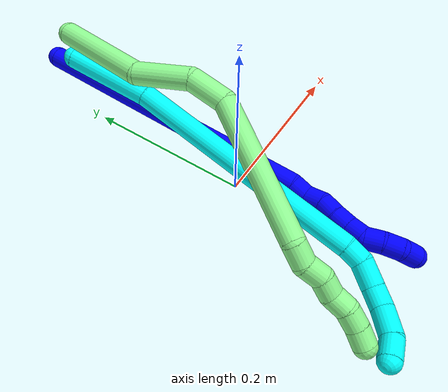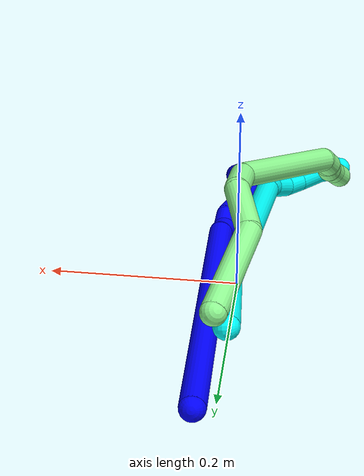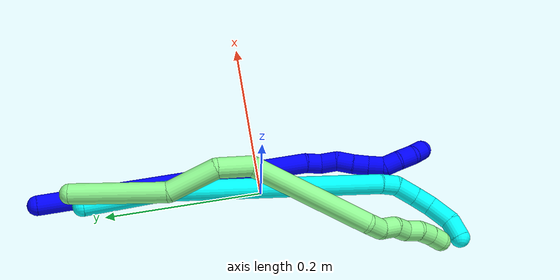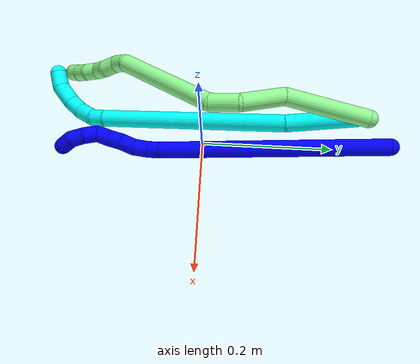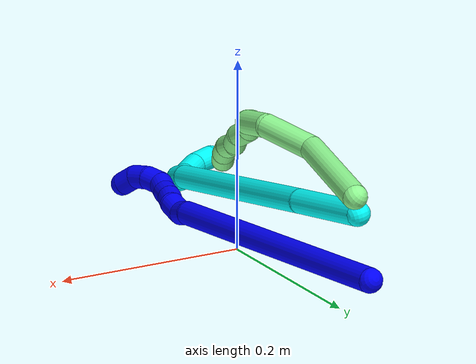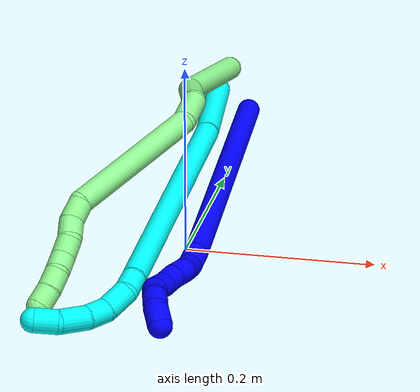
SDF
<sdf version="1.7">
 <world name="default">
  <model name="photoneo_s_sensor">
   <static>1</static>
   <pose>0 0 2 1.57079 1.57079 3.14159</pose>
   <link name="link">
    <inertial><mass>0.1</mass></inertial>
    <sensor name="sensor" type="depth">
     <update_rate>30</update_rate>
     <camera>
      <horizontal_fov>1.22</horizontal_fov>
      <image><width>1920</width><height>1200</height><format>B8G8R8</format></image>
      <clip><near>0.1</near><far>4</far></clip>
      <depth_camera><output>points</output></depth_camera>
     </camera>
     <plugin name="camera_plugin" filename="libgazebo_ros_depth_camera.so">
      <baseline>0.2</baseline>
      <alwaysOn>1</alwaysOn>
      <updateRate>0.0</updateRate>
      <cameraName>camera_ir</cameraName>
      <imageTopicName>/camera/color/image_raw</imageTopicName>
      <cameraInfoTopicName>/camera/color/camera_info</cameraInfoTopicName>
      <depthImageTopicName>/camera/depth/image_raw</depthImageTopicName>
      <depthImageCameraInfoTopicName>/camera/depth/camera_info</depthImageCameraInfoTopicName>
      <pointCloudTopicName>/camera/depth/points</pointCloudTopicName>
      <frameName>fr_optical</frameName>
      <pointCloudCutoff>0.1</pointCloudCutoff>
      <pointCloudCutoffMax>2.0</pointCloudCutoffMax>
      <distortionK1>0</distortionK1>
      <distortionK2>0</distortionK2>
      <distortionK3>0</distortionK3>
      <distortionT1>0</distortionT1>
      <distortionT2>0</distortionT2>
      <CxPrime>0</CxPrime>
      <Cx>0</Cx>
      <Cy>0</Cy>
      <focalLength>0</focalLength>
      <hackBaseline>0</hackBaseline>
     </plugin>
    </sensor>
   </link>
  </model>
  <model name="bin">
   <static>1</static>
   <link name="bottom">
    <collision name="collision-bottom">
     <pose>0 0 -0.01 0 -0 0</pose>
     <geometry><box><size>0.8 0.6 0.02</size></box></geometry>
     <surface>
      <friction><ode><mu>100</mu><mu2>100</mu2></ode></friction>
      <contact><collide_bitmask>65535</collide_bitmask></contact>
     </surface>
    </collision>
   </link>
   <link name="west_wall">
    <collision name="collision-west_wall">
     <pose>-0.41 0 0.1 0 -0 0</pose>
     <geometry><box><size>0.02 0.6 0.2</size></box></geometry>
     <surface>
      <friction><ode><mu>100</mu><mu2>100</mu2></ode></friction>
      <contact><collide_bitmask>65535</collide_bitmask></contact>
     </surface>
    </collision>
   </link>
   <link name="east_wall">
    <collision name="collision-east_wall">
     <pose>0.41 0 0.1 0 -0 0</pose>
     <geometry><box><size>0.02 0.6 0.2</size></box></geometry>
     <surface>
      <friction><ode><mu>100</mu><mu2>100</mu2></ode></friction>
      <contact><collide_bitmask>65535</collide_bitmask></contact>
     </surface>
    </collision>
   </link>
   <link name="south_wall">
    <collision name="collision-south_wall">
     <pose>0 -0.31 0.1 0 -0 0</pose>
     <geometry><box><size>0.8 0.02 0.2</size></box></geometry>
     <surface>
      <friction><ode><mu>100</mu><mu2>100</mu2></ode></friction>
      <contact><collide_bitmask>65535</collide_bitmask></contact>
     </surface>
    </collision>
   </link>
   <link name="north_wall">
    <collision name="collision-north_wall">
     <pose>0 0.31 0.1 0 -0 0</pose>
     <geometry><box><size>0.8 0.02 0.2</size></box></geometry>
     <surface>
      <friction><ode><mu>100</mu><mu2>100</mu2></ode></friction>
      <contact><collide_bitmask>65535</collide_bitmask></contact>
     </surface>
    </collision>
   </link>
  </model>
  <model name="1">
   <static>0</static>
   <link name="1">
    <collision name="collision-cylinder-e_1_1_4">
     <pose>-0.052594 -0.041779 -0.155165 2.87858 -0.31631 -1.75683</pose>
     <geometry><cylinder><radius>0.0125</radius><length>0.338159</length></cylinder></geometry>
     <surface>
      <friction><ode><mu>1.16</mu><mu2>1.16</mu2><slip1>0</slip1><slip2>0</slip2></ode></friction>
      <contact><ode><kp>1e+06</kp><kd>1</kd><max_vel>0</max_vel><min_depth>0.001</min_depth></ode></contact>
     </surface>
    </collision>
    <visual name="visual-cylinder-e_1_1_4">
     <pose>-0.052594 -0.041779 -0.155165 2.87858 -0.31631 -1.75683</pose>
     <geometry><cylinder><radius>0.0125</radius><length>0.338159</length></cylinder></geometry>
     <material><ambient>0 0 1 1</ambient></material>
    </visual>
    <collision name="collision-cylinder-e_2_4_5">
     <pose>-0.107615 -0.083691 -0.320218 3.12805 -0.240643 -3.02969</pose>
     <geometry><cylinder><radius>0.0125</radius><length>0.020364</length></cylinder></geometry>
     <surface>
      <friction><ode><mu>1.16</mu><mu2>1.16</mu2><slip1>0</slip1><slip2>0</slip2></ode></friction>
      <contact><ode><kp>1e+06</kp><kd>1</kd><max_vel>0</max_vel><min_depth>0.001</min_depth></ode></contact>
     </surface>
    </collision>
    <visual name="visual-cylinder-e_2_4_5">
     <pose>-0.107615 -0.083691 -0.320218 3.12805 -0.240643 -3.02969</pose>
     <geometry><cylinder><radius>0.0125</radius><length>0.020364</length></cylinder></geometry>
     <material><ambient>0 0 1 1</ambient></material>
    </visual>
    <collision name="collision-cylinder-e_3_5_6">
     <pose>-0.115919 -0.087348 -0.338239 2.73283 -0.585515 -1.93678</pose>
     <geometry><cylinder><radius>0.0125</radius><length>0.021269</length></cylinder></geometry>
     <surface>
      <friction><ode><mu>1.16</mu><mu2>1.16</mu2><slip1>0</slip1><slip2>0</slip2></ode></friction>
      <contact><ode><kp>1e+06</kp><kd>1</kd><max_vel>0</max_vel><min_depth>0.001</min_depth></ode></contact>
     </surface>
    </collision>
    <visual name="visual-cylinder-e_3_5_6">
     <pose>-0.115919 -0.087348 -0.338239 2.73283 -0.585515 -1.93678</pose>
     <geometry><cylinder><radius>0.0125</radius><length>0.021269</length></cylinder></geometry>
     <material><ambient>0 0 1 1</ambient></material>
    </visual>
    <collision name="collision-cylinder-e_4_6_7">
     <pose>-0.12784 -0.090642 -0.354376 -3.11301 -0.646593 3.05632</pose>
     <geometry><cylinder><radius>0.0125</radius><length>0.020066</length></cylinder></geometry>
     <surface>
      <friction><ode><mu>1.16</mu><mu2>1.16</mu2><slip1>0</slip1><slip2>0</slip2></ode></friction>
      <contact><ode><kp>1e+06</kp><kd>1</kd><max_vel>0</max_vel><min_depth>0.001</min_depth></ode></contact>
     </surface>
    </collision>
    <visual name="visual-cylinder-e_4_6_7">
     <pose>-0.12784 -0.090642 -0.354376 -3.11301 -0.646593 3.05632</pose>
     <geometry><cylinder><radius>0.0125</radius><length>0.020066</length></cylinder></geometry>
     <material><ambient>0 0 1 1</ambient></material>
    </visual>
    <collision name="collision-cylinder-e_5_7_8">
     <pose>-0.139019 -0.090794 -0.37097 3.09725 -0.538369 -2.98118</pose>
     <geometry><cylinder><radius>0.0125</radius><length>0.020027</length></cylinder></geometry>
     <surface>
      <friction><ode><mu>1.16</mu><mu2>1.16</mu2><slip1>0</slip1><slip2>0</slip2></ode></friction>
      <contact><ode><kp>1e+06</kp><kd>1</kd><max_vel>0</max_vel><min_depth>0.001</min_depth></ode></contact>
     </surface>
    </collision>
    <visual name="visual-cylinder-e_5_7_8">
     <pose>-0.139019 -0.090794 -0.37097 3.09725 -0.538369 -2.98118</pose>
     <geometry><cylinder><radius>0.0125</radius><length>0.020027</length></cylinder></geometry>
     <material><ambient>0 0 1 1</ambient></material>
    </visual>
    <collision name="collision-cylinder-e_6_8_9">
     <pose>-0.150489 -0.092326 -0.387231 2.99268 -0.684752 -2.72898</pose>
     <geometry><cylinder><radius>0.0125</radius><length>0.020033</length></cylinder></geometry>
     <surface>
      <friction><ode><mu>1.16</mu><mu2>1.16</mu2><slip1>0</slip1><slip2>0</slip2></ode></friction>
      <contact><ode><kp>1e+06</kp><kd>1</kd><max_vel>0</max_vel><min_depth>0.001</min_depth></ode></contact>
     </surface>
    </collision>
    <visual name="visual-cylinder-e_6_8_9">
     <pose>-0.150489 -0.092326 -0.387231 2.99268 -0.684752 -2.72898</pose>
     <geometry><cylinder><radius>0.0125</radius><length>0.020033</length></cylinder></geometry>
     <material><ambient>0 0 1 1</ambient></material>
    </visual>
    <collision name="collision-cylinder-e_7_9_10">
     <pose>-0.159763 -0.09847 -0.4031 2.59452 -0.297143 -0.980125</pose>
     <geometry><cylinder><radius>0.0125</radius><length>0.020073</length></cylinder></geometry>
     <surface>
      <friction><ode><mu>1.16</mu><mu2>1.16</mu2><slip1>0</slip1><slip2>0</slip2></ode></friction>
      <contact><ode><kp>1e+06</kp><kd>1</kd><max_vel>0</max_vel><min_depth>0.001</min_depth></ode></contact>
     </surface>
    </collision>
    <visual name="visual-cylinder-e_7_9_10">
     <pose>-0.159763 -0.09847 -0.4031 2.59452 -0.297143 -0.980125</pose>
     <geometry><cylinder><radius>0.0125</radius><length>0.020073</length></cylinder></geometry>
     <material><ambient>0 0 1 1</ambient></material>
    </visual>
    <collision name="collision-cylinder-e_8_10_11">
     <pose>-0.163751 -0.107248 -0.420495 2.75112 -0.105118 -0.520004</pose>
     <geometry><cylinder><radius>0.0125</radius><length>0.020006</length></cylinder></geometry>
     <surface>
      <friction><ode><mu>1.16</mu><mu2>1.16</mu2><slip1>0</slip1><slip2>0</slip2></ode></friction>
      <contact><ode><kp>1e+06</kp><kd>1</kd><max_vel>0</max_vel><min_depth>0.001</min_depth></ode></contact>
     </surface>
    </collision>
    <visual name="visual-cylinder-e_8_10_11">
     <pose>-0.163751 -0.107248 -0.420495 2.75112 -0.105118 -0.520004</pose>
     <geometry><cylinder><radius>0.0125</radius><length>0.020006</length></cylinder></geometry>
     <material><ambient>0 0 1 1</ambient></material>
    </visual>
    <collision name="collision-cylinder-e_9_11_2">
     <pose>-0.161542 -0.113195 -0.438899 2.91104 0.33182 1.9316</pose>
     <geometry><cylinder><radius>0.0125</radius><length>0.020002</length></cylinder></geometry>
     <surface>
      <friction><ode><mu>1.16</mu><mu2>1.16</mu2><slip1>0</slip1><slip2>0</slip2></ode></friction>
      <contact><ode><kp>1e+06</kp><kd>1</kd><max_vel>0</max_vel><min_depth>0.001</min_depth></ode></contact>
     </surface>
    </collision>
    <visual name="visual-cylinder-e_9_11_2">
     <pose>-0.161542 -0.113195 -0.438899 2.91104 0.33182 1.9316</pose>
     <geometry><cylinder><radius>0.0125</radius><length>0.020002</length></cylinder></geometry>
     <material><ambient>0 0 1 1</ambient></material>
    </visual>
    <collision name="collision-sphere-2">
     <pose>-0.158284 -0.115356 -0.448105 0 -0 0</pose>
     <geometry><sphere><radius>0.0125</radius></sphere></geometry>
     <surface>
      <friction><ode><mu>1.16</mu><mu2>1.16</mu2><slip1>0</slip1><slip2>0</slip2></ode></friction>
      <contact><ode><kp>1e+06</kp><kd>1</kd><max_vel>0</max_vel><min_depth>0.001</min_depth></ode></contact>
     </surface>
    </collision>
    <visual name="visual-sphere-2">
     <pose>-0.158284 -0.115356 -0.448105 0 -0 0</pose>
     <geometry><sphere><radius>0.0125</radius></sphere></geometry>
     <material><ambient>0 0 1 1</ambient></material>
    </visual>
    <collision name="collision-sphere-11">
     <pose>-0.1648 -0.111035 -0.429694 0 -0 0</pose>
     <geometry><sphere><radius>0.0125</radius></sphere></geometry>
     <surface>
      <friction><ode><mu>1.16</mu><mu2>1.16</mu2><slip1>0</slip1><slip2>0</slip2></ode></friction>
      <contact><ode><kp>1e+06</kp><kd>1</kd><max_vel>0</max_vel><min_depth>0.001</min_depth></ode></contact>
     </surface>
    </collision>
    <visual name="visual-sphere-11">
     <pose>-0.1648 -0.111035 -0.429694 0 -0 0</pose>
     <geometry><sphere><radius>0.0125</radius></sphere></geometry>
     <material><ambient>0 0 1 1</ambient></material>
    </visual>
    <collision name="collision-sphere-10">
     <pose>-0.162701 -0.103462 -0.411296 0 -0 0</pose>
     <geometry><sphere><radius>0.0125</radius></sphere></geometry>
     <surface>
      <friction><ode><mu>1.16</mu><mu2>1.16</mu2><slip1>0</slip1><slip2>0</slip2></ode></friction>
      <contact><ode><kp>1e+06</kp><kd>1</kd><max_vel>0</max_vel><min_depth>0.001</min_depth></ode></contact>
     </surface>
    </collision>
    <visual name="visual-sphere-10">
     <pose>-0.162701 -0.103462 -0.411296 0 -0 0</pose>
     <geometry><sphere><radius>0.0125</radius></sphere></geometry>
     <material><ambient>0 0 1 1</ambient></material>
    </visual>
    <collision name="collision-sphere-9">
     <pose>-0.156824 -0.093477 -0.394903 0 -0 0</pose>
     <geometry><sphere><radius>0.0125</radius></sphere></geometry>
     <surface>
      <friction><ode><mu>1.16</mu><mu2>1.16</mu2><slip1>0</slip1><slip2>0</slip2></ode></friction>
      <contact><ode><kp>1e+06</kp><kd>1</kd><max_vel>0</max_vel><min_depth>0.001</min_depth></ode></contact>
     </surface>
    </collision>
    <visual name="visual-sphere-9">
     <pose>-0.156824 -0.093477 -0.394903 0 -0 0</pose>
     <geometry><sphere><radius>0.0125</radius></sphere></geometry>
     <material><ambient>0 0 1 1</ambient></material>
    </visual>
    <collision name="collision-sphere-4">
     <pose>-0.105188 -0.083557 -0.31033 0 -0 0</pose>
     <geometry><sphere><radius>0.0125</radius></sphere></geometry>
     <surface>
      <friction><ode><mu>1.16</mu><mu2>1.16</mu2><slip1>0</slip1><slip2>0</slip2></ode></friction>
      <contact><ode><kp>1e+06</kp><kd>1</kd><max_vel>0</max_vel><min_depth>0.001</min_depth></ode></contact>
     </surface>
    </collision>
    <visual name="visual-sphere-4">
     <pose>-0.105188 -0.083557 -0.31033 0 -0 0</pose>
     <geometry><sphere><radius>0.0125</radius></sphere></geometry>
     <material><ambient>0 0 1 1</ambient></material>
    </visual>
    <collision name="collision-sphere-1">
     <geometry><sphere><radius>0.0125</radius></sphere></geometry>
     <surface>
      <friction><ode><mu>1.16</mu><mu2>1.16</mu2><slip1>0</slip1><slip2>0</slip2></ode></friction>
      <contact><ode><kp>1e+06</kp><kd>1</kd><max_vel>0</max_vel><min_depth>0.001</min_depth></ode></contact>
     </surface>
    </collision>
    <visual name="visual-sphere-1">
     <geometry><sphere><radius>0.0125</radius></sphere></geometry>
     <material><ambient>0 0 1 1</ambient></material>
    </visual>
    <collision name="collision-sphere-8">
     <pose>-0.144154 -0.091175 -0.379558 0 -0 0</pose>
     <geometry><sphere><radius>0.0125</radius></sphere></geometry>
     <surface>
      <friction><ode><mu>1.16</mu><mu2>1.16</mu2><slip1>0</slip1><slip2>0</slip2></ode></friction>
      <contact><ode><kp>1e+06</kp><kd>1</kd><max_vel>0</max_vel><min_depth>0.001</min_depth></ode></contact>
     </surface>
    </collision>
    <visual name="visual-sphere-8">
     <pose>-0.144154 -0.091175 -0.379558 0 -0 0</pose>
     <geometry><sphere><radius>0.0125</radius></sphere></geometry>
     <material><ambient>0 0 1 1</ambient></material>
    </visual>
    <collision name="collision-sphere-5">
     <pose>-0.110042 -0.083825 -0.330106 0 -0 0</pose>
     <geometry><sphere><radius>0.0125</radius></sphere></geometry>
     <surface>
      <friction><ode><mu>1.16</mu><mu2>1.16</mu2><slip1>0</slip1><slip2>0</slip2></ode></friction>
      <contact><ode><kp>1e+06</kp><kd>1</kd><max_vel>0</max_vel><min_depth>0.001</min_depth></ode></contact>
     </surface>
    </collision>
    <visual name="visual-sphere-5">
     <pose>-0.110042 -0.083825 -0.330106 0 -0 0</pose>
     <geometry><sphere><radius>0.0125</radius></sphere></geometry>
     <material><ambient>0 0 1 1</ambient></material>
    </visual>
    <collision name="collision-sphere-6">
     <pose>-0.121796 -0.090871 -0.346372 0 -0 0</pose>
     <geometry><sphere><radius>0.0125</radius></sphere></geometry>
     <surface>
      <friction><ode><mu>1.16</mu><mu2>1.16</mu2><slip1>0</slip1><slip2>0</slip2></ode></friction>
      <contact><ode><kp>1e+06</kp><kd>1</kd><max_vel>0</max_vel><min_depth>0.001</min_depth></ode></contact>
     </surface>
    </collision>
    <visual name="visual-sphere-6">
     <pose>-0.121796 -0.090871 -0.346372 0 -0 0</pose>
     <geometry><sphere><radius>0.0125</radius></sphere></geometry>
     <material><ambient>0 0 1 1</ambient></material>
    </visual>
    <collision name="collision-sphere-7">
     <pose>-0.133885 -0.090413 -0.362381 0 -0 0</pose>
     <geometry><sphere><radius>0.0125</radius></sphere></geometry>
     <surface>
      <friction><ode><mu>1.16</mu><mu2>1.16</mu2><slip1>0</slip1><slip2>0</slip2></ode></friction>
      <contact><ode><kp>1e+06</kp><kd>1</kd><max_vel>0</max_vel><min_depth>0.001</min_depth></ode></contact>
     </surface>
    </collision>
    <visual name="visual-sphere-7">
     <pose>-0.133885 -0.090413 -0.362381 0 -0 0</pose>
     <geometry><sphere><radius>0.0125</radius></sphere></geometry>
     <material><ambient>0 0 1 1</ambient></material>
    </visual>
    <inertial>
     <pose>-0.081041 -0.059126 -0.227533 0 -0 0</pose>
     <mass>0.5</mass>
     <inertia>
      <ixx>-0.00361</ixx>
      <ixy>0</ixy>
      <ixz>0</ixz>
      <iyy>-0.002193</iyy>
      <iyz>0</iyz>
      <izz>0.001777</izz>
     </inertia>
    </inertial>
   </link>
   <pose>0.013236 0.275223 0.055421 -0.825157 0.786271 0.595279</pose>
  </model>
  <model name="3">
   <static>0</static>
   <link name="3">
    <collision name="collision-cylinder-e_1_1_4">
     <pose>-0.018914 -0.043402 -0.010927 1.81744 -0.399836 -0.508665</pose>
     <geometry><cylinder><radius>0.0125</radius><length>0.097177</length></cylinder></geometry>
     <surface>
      <friction><ode><mu>1.16</mu><mu2>1.16</mu2><slip1>0</slip1><slip2>0</slip2></ode></friction>
      <contact><ode><kp>1e+06</kp><kd>1</kd><max_vel>0</max_vel><min_depth>0.001</min_depth></ode></contact>
     </surface>
    </collision>
    <visual name="visual-cylinder-e_1_1_4">
     <pose>-0.018914 -0.043402 -0.010927 1.81744 -0.399836 -0.508665</pose>
     <geometry><cylinder><radius>0.0125</radius><length>0.097177</length></cylinder></geometry>
     <material><ambient>0.003922 1 0.996078 1</ambient></material>
    </visual>
    <collision name="collision-cylinder-e_2_4_5">
     <pose>-0.102553 -0.206801 -0.036201 1.68979 -0.491703 -0.551047</pose>
     <geometry><cylinder><radius>0.0125</radius><length>0.274187</length></cylinder></geometry>
     <surface>
      <friction><ode><mu>1.16</mu><mu2>1.16</mu2><slip1>0</slip1><slip2>0</slip2></ode></friction>
      <contact><ode><kp>1e+06</kp><kd>1</kd><max_vel>0</max_vel><min_depth>0.001</min_depth></ode></contact>
     </surface>
    </collision>
    <visual name="visual-cylinder-e_2_4_5">
     <pose>-0.102553 -0.206801 -0.036201 1.68979 -0.491703 -0.551047</pose>
     <geometry><cylinder><radius>0.0125</radius><length>0.274187</length></cylinder></geometry>
     <material><ambient>0.003922 1 0.996078 1</ambient></material>
    </visual>
    <collision name="collision-cylinder-e_3_5_6">
     <pose>-0.173543 -0.335332 -0.050971 1.62048 -0.632583 -0.662559</pose>
     <geometry><cylinder><radius>0.0125</radius><length>0.021189</length></cylinder></geometry>
     <surface>
      <friction><ode><mu>1.16</mu><mu2>1.16</mu2><slip1>0</slip1><slip2>0</slip2></ode></friction>
      <contact><ode><kp>1e+06</kp><kd>1</kd><max_vel>0</max_vel><min_depth>0.001</min_depth></ode></contact>
     </surface>
    </collision>
    <visual name="visual-cylinder-e_3_5_6">
     <pose>-0.173543 -0.335332 -0.050971 1.62048 -0.632583 -0.662559</pose>
     <geometry><cylinder><radius>0.0125</radius><length>0.021189</length></cylinder></geometry>
     <material><ambient>0.003922 1 0.996078 1</ambient></material>
    </visual>
    <collision name="collision-cylinder-e_4_6_7">
     <pose>-0.189865 -0.353164 -0.04697 1.12654 -0.773652 -0.503578</pose>
     <geometry><cylinder><radius>0.0125</radius><length>0.028791</length></cylinder></geometry>
     <surface>
      <friction><ode><mu>1.16</mu><mu2>1.16</mu2><slip1>0</slip1><slip2>0</slip2></ode></friction>
      <contact><ode><kp>1e+06</kp><kd>1</kd><max_vel>0</max_vel><min_depth>0.001</min_depth></ode></contact>
     </surface>
    </collision>
    <visual name="visual-cylinder-e_4_6_7">
     <pose>-0.189865 -0.353164 -0.04697 1.12654 -0.773652 -0.503578</pose>
     <geometry><cylinder><radius>0.0125</radius><length>0.028791</length></cylinder></geometry>
     <material><ambient>0.003922 1 0.996078 1</ambient></material>
    </visual>
    <collision name="collision-cylinder-e_5_7_8">
     <pose>-0.205227 -0.370879 -0.036502 0.948174 -0.473098 -0.246136</pose>
     <geometry><cylinder><radius>0.0125</radius><length>0.023277</length></cylinder></geometry>
     <surface>
      <friction><ode><mu>1.16</mu><mu2>1.16</mu2><slip1>0</slip1><slip2>0</slip2></ode></friction>
      <contact><ode><kp>1e+06</kp><kd>1</kd><max_vel>0</max_vel><min_depth>0.001</min_depth></ode></contact>
     </surface>
    </collision>
    <visual name="visual-cylinder-e_5_7_8">
     <pose>-0.205227 -0.370879 -0.036502 0.948174 -0.473098 -0.246136</pose>
     <geometry><cylinder><radius>0.0125</radius><length>0.023277</length></cylinder></geometry>
     <material><ambient>0.003922 1 0.996078 1</ambient></material>
    </visual>
    <collision name="collision-cylinder-e_6_8_9">
     <pose>-0.215301 -0.389739 -0.020048 0.786898 -0.312853 -0.130746</pose>
     <geometry><cylinder><radius>0.0125</radius><length>0.031002</length></cylinder></geometry>
     <surface>
      <friction><ode><mu>1.16</mu><mu2>1.16</mu2><slip1>0</slip1><slip2>0</slip2></ode></friction>
      <contact><ode><kp>1e+06</kp><kd>1</kd><max_vel>0</max_vel><min_depth>0.001</min_depth></ode></contact>
     </surface>
    </collision>
    <visual name="visual-cylinder-e_6_8_9">
     <pose>-0.215301 -0.389739 -0.020048 0.786898 -0.312853 -0.130746</pose>
     <geometry><cylinder><radius>0.0125</radius><length>0.031002</length></cylinder></geometry>
     <material><ambient>0.003922 1 0.996078 1</ambient></material>
    </visual>
    <collision name="collision-cylinder-e_7_9_2">
     <pose>-0.222685 -0.404415 0.001494 0.363375 -0.216087 -0.039848</pose>
     <geometry><cylinder><radius>0.0125</radius><length>0.024378</length></cylinder></geometry>
     <surface>
      <friction><ode><mu>1.16</mu><mu2>1.16</mu2><slip1>0</slip1><slip2>0</slip2></ode></friction>
      <contact><ode><kp>1e+06</kp><kd>1</kd><max_vel>0</max_vel><min_depth>0.001</min_depth></ode></contact>
     </surface>
    </collision>
    <visual name="visual-cylinder-e_7_9_2">
     <pose>-0.222685 -0.404415 0.001494 0.363375 -0.216087 -0.039848</pose>
     <geometry><cylinder><radius>0.0125</radius><length>0.024378</length></cylinder></geometry>
     <material><ambient>0.003922 1 0.996078 1</ambient></material>
    </visual>
    <collision name="collision-sphere-2">
     <pose>-0.225298 -0.408647 0.012622 0 -0 0</pose>
     <geometry><sphere><radius>0.0125</radius></sphere></geometry>
     <surface>
      <friction><ode><mu>1.16</mu><mu2>1.16</mu2><slip1>0</slip1><slip2>0</slip2></ode></friction>
      <contact><ode><kp>1e+06</kp><kd>1</kd><max_vel>0</max_vel><min_depth>0.001</min_depth></ode></contact>
     </surface>
    </collision>
    <visual name="visual-sphere-2">
     <pose>-0.225298 -0.408647 0.012622 0 -0 0</pose>
     <geometry><sphere><radius>0.0125</radius></sphere></geometry>
     <material><ambient>0.003922 1 0.996078 1</ambient></material>
    </visual>
    <collision name="collision-sphere-9">
     <pose>-0.220072 -0.400183 -0.009635 0 -0 0</pose>
     <geometry><sphere><radius>0.0125</radius></sphere></geometry>
     <surface>
      <friction><ode><mu>1.16</mu><mu2>1.16</mu2><slip1>0</slip1><slip2>0</slip2></ode></friction>
      <contact><ode><kp>1e+06</kp><kd>1</kd><max_vel>0</max_vel><min_depth>0.001</min_depth></ode></contact>
     </surface>
    </collision>
    <visual name="visual-sphere-9">
     <pose>-0.220072 -0.400183 -0.009635 0 -0 0</pose>
     <geometry><sphere><radius>0.0125</radius></sphere></geometry>
     <material><ambient>0.003922 1 0.996078 1</ambient></material>
    </visual>
    <collision name="collision-sphere-4">
     <pose>-0.037828 -0.086803 -0.021854 0 -0 0</pose>
     <geometry><sphere><radius>0.0125</radius></sphere></geometry>
     <surface>
      <friction><ode><mu>1.16</mu><mu2>1.16</mu2><slip1>0</slip1><slip2>0</slip2></ode></friction>
      <contact><ode><kp>1e+06</kp><kd>1</kd><max_vel>0</max_vel><min_depth>0.001</min_depth></ode></contact>
     </surface>
    </collision>
    <visual name="visual-sphere-4">
     <pose>-0.037828 -0.086803 -0.021854 0 -0 0</pose>
     <geometry><sphere><radius>0.0125</radius></sphere></geometry>
     <material><ambient>0.003922 1 0.996078 1</ambient></material>
    </visual>
    <collision name="collision-sphere-1">
     <geometry><sphere><radius>0.0125</radius></sphere></geometry>
     <surface>
      <friction><ode><mu>1.16</mu><mu2>1.16</mu2><slip1>0</slip1><slip2>0</slip2></ode></friction>
      <contact><ode><kp>1e+06</kp><kd>1</kd><max_vel>0</max_vel><min_depth>0.001</min_depth></ode></contact>
     </surface>
    </collision>
    <visual name="visual-sphere-1">
     <geometry><sphere><radius>0.0125</radius></sphere></geometry>
     <material><ambient>0.003922 1 0.996078 1</ambient></material>
    </visual>
    <collision name="collision-sphere-8">
     <pose>-0.21053 -0.379295 -0.030461 0 -0 0</pose>
     <geometry><sphere><radius>0.0125</radius></sphere></geometry>
     <surface>
      <friction><ode><mu>1.16</mu><mu2>1.16</mu2><slip1>0</slip1><slip2>0</slip2></ode></friction>
      <contact><ode><kp>1e+06</kp><kd>1</kd><max_vel>0</max_vel><min_depth>0.001</min_depth></ode></contact>
     </surface>
    </collision>
    <visual name="visual-sphere-8">
     <pose>-0.21053 -0.379295 -0.030461 0 -0 0</pose>
     <geometry><sphere><radius>0.0125</radius></sphere></geometry>
     <material><ambient>0.003922 1 0.996078 1</ambient></material>
    </visual>
    <collision name="collision-sphere-5">
     <pose>-0.167279 -0.326799 -0.050547 0 -0 0</pose>
     <geometry><sphere><radius>0.0125</radius></sphere></geometry>
     <surface>
      <friction><ode><mu>1.16</mu><mu2>1.16</mu2><slip1>0</slip1><slip2>0</slip2></ode></friction>
      <contact><ode><kp>1e+06</kp><kd>1</kd><max_vel>0</max_vel><min_depth>0.001</min_depth></ode></contact>
     </surface>
    </collision>
    <visual name="visual-sphere-5">
     <pose>-0.167279 -0.326799 -0.050547 0 -0 0</pose>
     <geometry><sphere><radius>0.0125</radius></sphere></geometry>
     <material><ambient>0.003922 1 0.996078 1</ambient></material>
    </visual>
    <collision name="collision-sphere-6">
     <pose>-0.179806 -0.343866 -0.051396 0 -0 0</pose>
     <geometry><sphere><radius>0.0125</radius></sphere></geometry>
     <surface>
      <friction><ode><mu>1.16</mu><mu2>1.16</mu2><slip1>0</slip1><slip2>0</slip2></ode></friction>
      <contact><ode><kp>1e+06</kp><kd>1</kd><max_vel>0</max_vel><min_depth>0.001</min_depth></ode></contact>
     </surface>
    </collision>
    <visual name="visual-sphere-6">
     <pose>-0.179806 -0.343866 -0.051396 0 -0 0</pose>
     <geometry><sphere><radius>0.0125</radius></sphere></geometry>
     <material><ambient>0.003922 1 0.996078 1</ambient></material>
    </visual>
    <collision name="collision-sphere-7">
     <pose>-0.199924 -0.362463 -0.042544 0 -0 0</pose>
     <geometry><sphere><radius>0.0125</radius></sphere></geometry>
     <surface>
      <friction><ode><mu>1.16</mu><mu2>1.16</mu2><slip1>0</slip1><slip2>0</slip2></ode></friction>
      <contact><ode><kp>1e+06</kp><kd>1</kd><max_vel>0</max_vel><min_depth>0.001</min_depth></ode></contact>
     </surface>
    </collision>
    <visual name="visual-sphere-7">
     <pose>-0.199924 -0.362463 -0.042544 0 -0 0</pose>
     <geometry><sphere><radius>0.0125</radius></sphere></geometry>
     <material><ambient>0.003922 1 0.996078 1</ambient></material>
    </visual>
    <inertial>
     <pose>-0.111961 -0.217534 -0.029709 0 -0 0</pose>
     <mass>0.5</mass>
     <inertia>
      <ixx>0.000519</ixx>
      <ixy>0</ixy>
      <ixz>0</ixz>
      <iyy>-0.000613</iyy>
      <iyz>0</iyz>
      <izz>0.002447</izz>
     </inertia>
    </inertial>
   </link>
   <pose>-0.009304 0.215425 0.100309 -0.907575 -1.17972 0.817512</pose>
  </model>
  <model name="13">
   <static>0</static>
   <link name="13">
    <collision name="collision-cylinder-e_1_1_4">
     <pose>-0.047947 -0.02076 0.026124 0.671489 -0.962802 -0.360625</pose>
     <geometry><cylinder><radius>0.0125</radius><length>0.11683</length></cylinder></geometry>
     <surface>
      <friction><ode><mu>1.16</mu><mu2>1.16</mu2><slip1>0</slip1><slip2>0</slip2></ode></friction>
      <contact><ode><kp>1e+06</kp><kd>1</kd><max_vel>0</max_vel><min_depth>0.001</min_depth></ode></contact>
     </surface>
    </collision>
    <visual name="visual-cylinder-e_1_1_4">
     <pose>-0.047947 -0.02076 0.026124 0.671489 -0.962802 -0.360625</pose>
     <geometry><cylinder><radius>0.0125</radius><length>0.11683</length></cylinder></geometry>
     <material><ambient>0.564706 0.984314 0.572549 1</ambient></material>
    </visual>
    <collision name="collision-cylinder-e_2_4_5">
     <pose>-0.121203 -0.039263 0.07027 -0.124599 -0.948312 0.064006</pose>
     <geometry><cylinder><radius>0.0125</radius><length>0.062305</length></cylinder></geometry>
     <surface>
      <friction><ode><mu>1.16</mu><mu2>1.16</mu2><slip1>0</slip1><slip2>0</slip2></ode></friction>
      <contact><ode><kp>1e+06</kp><kd>1</kd><max_vel>0</max_vel><min_depth>0.001</min_depth></ode></contact>
     </surface>
    </collision>
    <visual name="visual-cylinder-e_2_4_5">
     <pose>-0.121203 -0.039263 0.07027 -0.124599 -0.948312 0.064006</pose>
     <geometry><cylinder><radius>0.0125</radius><length>0.062305</length></cylinder></geometry>
     <material><ambient>0.564706 0.984314 0.572549 1</ambient></material>
    </visual>
    <collision name="collision-cylinder-e_3_5_6">
     <pose>-0.159666 -0.04383 0.103127 0.431172 -0.678135 -0.154164</pose>
     <geometry><cylinder><radius>0.0125</radius><length>0.041935</length></cylinder></geometry>
     <surface>
      <friction><ode><mu>1.16</mu><mu2>1.16</mu2><slip1>0</slip1><slip2>0</slip2></ode></friction>
      <contact><ode><kp>1e+06</kp><kd>1</kd><max_vel>0</max_vel><min_depth>0.001</min_depth></ode></contact>
     </surface>
    </collision>
    <visual name="visual-cylinder-e_3_5_6">
     <pose>-0.159666 -0.04383 0.103127 0.431172 -0.678135 -0.154164</pose>
     <geometry><cylinder><radius>0.0125</radius><length>0.041935</length></cylinder></geometry>
     <material><ambient>0.564706 0.984314 0.572549 1</ambient></material>
    </visual>
    <collision name="collision-cylinder-e_4_6_7">
     <pose>-0.206499 -0.108208 0.156872 0.976306 -0.451396 -0.242656</pose>
     <geometry><cylinder><radius>0.0125</radius><length>0.154413</length></cylinder></geometry>
     <surface>
      <friction><ode><mu>1.16</mu><mu2>1.16</mu2><slip1>0</slip1><slip2>0</slip2></ode></friction>
      <contact><ode><kp>1e+06</kp><kd>1</kd><max_vel>0</max_vel><min_depth>0.001</min_depth></ode></contact>
     </surface>
    </collision>
    <visual name="visual-cylinder-e_4_6_7">
     <pose>-0.206499 -0.108208 0.156872 0.976306 -0.451396 -0.242656</pose>
     <geometry><cylinder><radius>0.0125</radius><length>0.154413</length></cylinder></geometry>
     <material><ambient>0.564706 0.984314 0.572549 1</ambient></material>
    </visual>
    <collision name="collision-cylinder-e_5_7_8">
     <pose>-0.241541 -0.172724 0.204539 0.671738 -0.121186 -0.042351</pose>
     <geometry><cylinder><radius>0.0125</radius><length>0.022538</length></cylinder></geometry>
     <surface>
      <friction><ode><mu>1.16</mu><mu2>1.16</mu2><slip1>0</slip1><slip2>0</slip2></ode></friction>
      <contact><ode><kp>1e+06</kp><kd>1</kd><max_vel>0</max_vel><min_depth>0.001</min_depth></ode></contact>
     </surface>
    </collision>
    <visual name="visual-cylinder-e_5_7_8">
     <pose>-0.241541 -0.172724 0.204539 0.671738 -0.121186 -0.042351</pose>
     <geometry><cylinder><radius>0.0125</radius><length>0.022538</length></cylinder></geometry>
     <material><ambient>0.564706 0.984314 0.572549 1</ambient></material>
    </visual>
    <collision name="collision-cylinder-e_6_8_9">
     <pose>-0.246357 -0.182249 0.223364 0.249289 -0.320907 -0.040551</pose>
     <geometry><cylinder><radius>0.0125</radius><length>0.021897</length></cylinder></geometry>
     <surface>
      <friction><ode><mu>1.16</mu><mu2>1.16</mu2><slip1>0</slip1><slip2>0</slip2></ode></friction>
      <contact><ode><kp>1e+06</kp><kd>1</kd><max_vel>0</max_vel><min_depth>0.001</min_depth></ode></contact>
     </surface>
    </collision>
    <visual name="visual-cylinder-e_6_8_9">
     <pose>-0.246357 -0.182249 0.223364 0.249289 -0.320907 -0.040551</pose>
     <geometry><cylinder><radius>0.0125</radius><length>0.021897</length></cylinder></geometry>
     <material><ambient>0.564706 0.984314 0.572549 1</ambient></material>
    </visual>
    <collision name="collision-cylinder-e_7_9_10">
     <pose>-0.250435 -0.190225 0.241834 0.572333 -0.062448 -0.01838</pose>
     <geometry><cylinder><radius>0.0125</radius><length>0.020027</length></cylinder></geometry>
     <surface>
      <friction><ode><mu>1.16</mu><mu2>1.16</mu2><slip1>0</slip1><slip2>0</slip2></ode></friction>
      <contact><ode><kp>1e+06</kp><kd>1</kd><max_vel>0</max_vel><min_depth>0.001</min_depth></ode></contact>
     </surface>
    </collision>
    <visual name="visual-cylinder-e_7_9_10">
     <pose>-0.250435 -0.190225 0.241834 0.572333 -0.062448 -0.01838</pose>
     <geometry><cylinder><radius>0.0125</radius><length>0.020027</length></cylinder></geometry>
     <material><ambient>0.564706 0.984314 0.572549 1</ambient></material>
    </visual>
    <collision name="collision-cylinder-e_8_10_11">
     <pose>-0.255489 -0.199461 0.258354 0.440144 -0.458485 -0.104302</pose>
     <geometry><cylinder><radius>0.0125</radius><length>0.020017</length></cylinder></geometry>
     <surface>
      <friction><ode><mu>1.16</mu><mu2>1.16</mu2><slip1>0</slip1><slip2>0</slip2></ode></friction>
      <contact><ode><kp>1e+06</kp><kd>1</kd><max_vel>0</max_vel><min_depth>0.001</min_depth></ode></contact>
     </surface>
    </collision>
    <visual name="visual-cylinder-e_8_10_11">
     <pose>-0.255489 -0.199461 0.258354 0.440144 -0.458485 -0.104302</pose>
     <geometry><cylinder><radius>0.0125</radius><length>0.020017</length></cylinder></geometry>
     <material><ambient>0.564706 0.984314 0.572549 1</ambient></material>
    </visual>
    <collision name="collision-cylinder-e_9_11_12">
     <pose>-0.261435 -0.209059 0.274511 0.622932 -0.151966 -0.049009</pose>
     <geometry><cylinder><radius>0.0125</radius><length>0.020023</length></cylinder></geometry>
     <surface>
      <friction><ode><mu>1.16</mu><mu2>1.16</mu2><slip1>0</slip1><slip2>0</slip2></ode></friction>
      <contact><ode><kp>1e+06</kp><kd>1</kd><max_vel>0</max_vel><min_depth>0.001</min_depth></ode></contact>
     </surface>
    </collision>
    <visual name="visual-cylinder-e_9_11_12">
     <pose>-0.261435 -0.209059 0.274511 0.622932 -0.151966 -0.049009</pose>
     <geometry><cylinder><radius>0.0125</radius><length>0.020023</length></cylinder></geometry>
     <material><ambient>0.564706 0.984314 0.572549 1</ambient></material>
    </visual>
    <collision name="collision-cylinder-e_10_12_2">
     <pose>-0.264322 -0.221629 0.289764 0.75553 -0.137472 -0.054625</pose>
     <geometry><cylinder><radius>0.0125</radius><length>0.020015</length></cylinder></geometry>
     <surface>
      <friction><ode><mu>1.16</mu><mu2>1.16</mu2><slip1>0</slip1><slip2>0</slip2></ode></friction>
      <contact><ode><kp>1e+06</kp><kd>1</kd><max_vel>0</max_vel><min_depth>0.001</min_depth></ode></contact>
     </surface>
    </collision>
    <visual name="visual-cylinder-e_10_12_2">
     <pose>-0.264322 -0.221629 0.289764 0.75553 -0.137472 -0.054625</pose>
     <geometry><cylinder><radius>0.0125</radius><length>0.020015</length></cylinder></geometry>
     <material><ambient>0.564706 0.984314 0.572549 1</ambient></material>
    </visual>
    <collision name="collision-sphere-2">
     <pose>-0.265693 -0.228427 0.29698 0 -0 0</pose>
     <geometry><sphere><radius>0.0125</radius></sphere></geometry>
     <surface>
      <friction><ode><mu>1.16</mu><mu2>1.16</mu2><slip1>0</slip1><slip2>0</slip2></ode></friction>
      <contact><ode><kp>1e+06</kp><kd>1</kd><max_vel>0</max_vel><min_depth>0.001</min_depth></ode></contact>
     </surface>
    </collision>
    <visual name="visual-sphere-2">
     <pose>-0.265693 -0.228427 0.29698 0 -0 0</pose>
     <geometry><sphere><radius>0.0125</radius></sphere></geometry>
     <material><ambient>0.564706 0.984314 0.572549 1</ambient></material>
    </visual>
    <collision name="collision-sphere-12">
     <pose>-0.26295 -0.214832 0.282548 0 -0 0</pose>
     <geometry><sphere><radius>0.0125</radius></sphere></geometry>
     <surface>
      <friction><ode><mu>1.16</mu><mu2>1.16</mu2><slip1>0</slip1><slip2>0</slip2></ode></friction>
      <contact><ode><kp>1e+06</kp><kd>1</kd><max_vel>0</max_vel><min_depth>0.001</min_depth></ode></contact>
     </surface>
    </collision>
    <visual name="visual-sphere-12">
     <pose>-0.26295 -0.214832 0.282548 0 -0 0</pose>
     <geometry><sphere><radius>0.0125</radius></sphere></geometry>
     <material><ambient>0.564706 0.984314 0.572549 1</ambient></material>
    </visual>
    <collision name="collision-sphere-11">
     <pose>-0.259919 -0.203285 0.266474 0 -0 0</pose>
     <geometry><sphere><radius>0.0125</radius></sphere></geometry>
     <surface>
      <friction><ode><mu>1.16</mu><mu2>1.16</mu2><slip1>0</slip1><slip2>0</slip2></ode></friction>
      <contact><ode><kp>1e+06</kp><kd>1</kd><max_vel>0</max_vel><min_depth>0.001</min_depth></ode></contact>
     </surface>
    </collision>
    <visual name="visual-sphere-11">
     <pose>-0.259919 -0.203285 0.266474 0 -0 0</pose>
     <geometry><sphere><radius>0.0125</radius></sphere></geometry>
     <material><ambient>0.564706 0.984314 0.572549 1</ambient></material>
    </visual>
    <collision name="collision-sphere-10">
     <pose>-0.25106 -0.195638 0.250235 0 -0 0</pose>
     <geometry><sphere><radius>0.0125</radius></sphere></geometry>
     <surface>
      <friction><ode><mu>1.16</mu><mu2>1.16</mu2><slip1>0</slip1><slip2>0</slip2></ode></friction>
      <contact><ode><kp>1e+06</kp><kd>1</kd><max_vel>0</max_vel><min_depth>0.001</min_depth></ode></contact>
     </surface>
    </collision>
    <visual name="visual-sphere-10">
     <pose>-0.25106 -0.195638 0.250235 0 -0 0</pose>
     <geometry><sphere><radius>0.0125</radius></sphere></geometry>
     <material><ambient>0.564706 0.984314 0.572549 1</ambient></material>
    </visual>
    <collision name="collision-sphere-9">
     <pose>-0.24981 -0.184812 0.233432 0 -0 0</pose>
     <geometry><sphere><radius>0.0125</radius></sphere></geometry>
     <surface>
      <friction><ode><mu>1.16</mu><mu2>1.16</mu2><slip1>0</slip1><slip2>0</slip2></ode></friction>
      <contact><ode><kp>1e+06</kp><kd>1</kd><max_vel>0</max_vel><min_depth>0.001</min_depth></ode></contact>
     </surface>
    </collision>
    <visual name="visual-sphere-9">
     <pose>-0.24981 -0.184812 0.233432 0 -0 0</pose>
     <geometry><sphere><radius>0.0125</radius></sphere></geometry>
     <material><ambient>0.564706 0.984314 0.572549 1</ambient></material>
    </visual>
    <collision name="collision-sphere-4">
     <pose>-0.095894 -0.04152 0.052247 0 -0 0</pose>
     <geometry><sphere><radius>0.0125</radius></sphere></geometry>
     <surface>
      <friction><ode><mu>1.16</mu><mu2>1.16</mu2><slip1>0</slip1><slip2>0</slip2></ode></friction>
      <contact><ode><kp>1e+06</kp><kd>1</kd><max_vel>0</max_vel><min_depth>0.001</min_depth></ode></contact>
     </surface>
    </collision>
    <visual name="visual-sphere-4">
     <pose>-0.095894 -0.04152 0.052247 0 -0 0</pose>
     <geometry><sphere><radius>0.0125</radius></sphere></geometry>
     <material><ambient>0.564706 0.984314 0.572549 1</ambient></material>
    </visual>
    <collision name="collision-sphere-1">
     <geometry><sphere><radius>0.0125</radius></sphere></geometry>
     <surface>
      <friction><ode><mu>1.16</mu><mu2>1.16</mu2><slip1>0</slip1><slip2>0</slip2></ode></friction>
      <contact><ode><kp>1e+06</kp><kd>1</kd><max_vel>0</max_vel><min_depth>0.001</min_depth></ode></contact>
     </surface>
    </collision>
    <visual name="visual-sphere-1">
     <geometry><sphere><radius>0.0125</radius></sphere></geometry>
     <material><ambient>0.564706 0.984314 0.572549 1</ambient></material>
    </visual>
    <collision name="collision-sphere-8">
     <pose>-0.242903 -0.179686 0.213295 0 -0 0</pose>
     <geometry><sphere><radius>0.0125</radius></sphere></geometry>
     <surface>
      <friction><ode><mu>1.16</mu><mu2>1.16</mu2><slip1>0</slip1><slip2>0</slip2></ode></friction>
      <contact><ode><kp>1e+06</kp><kd>1</kd><max_vel>0</max_vel><min_depth>0.001</min_depth></ode></contact>
     </surface>
    </collision>
    <visual name="visual-sphere-8">
     <pose>-0.242903 -0.179686 0.213295 0 -0 0</pose>
     <geometry><sphere><radius>0.0125</radius></sphere></geometry>
     <material><ambient>0.564706 0.984314 0.572549 1</ambient></material>
    </visual>
    <collision name="collision-sphere-5">
     <pose>-0.146513 -0.037005 0.088293 0 -0 0</pose>
     <geometry><sphere><radius>0.0125</radius></sphere></geometry>
     <surface>
      <friction><ode><mu>1.16</mu><mu2>1.16</mu2><slip1>0</slip1><slip2>0</slip2></ode></friction>
      <contact><ode><kp>1e+06</kp><kd>1</kd><max_vel>0</max_vel><min_depth>0.001</min_depth></ode></contact>
     </surface>
    </collision>
    <visual name="visual-sphere-5">
     <pose>-0.146513 -0.037005 0.088293 0 -0 0</pose>
     <geometry><sphere><radius>0.0125</radius></sphere></geometry>
     <material><ambient>0.564706 0.984314 0.572549 1</ambient></material>
    </visual>
    <collision name="collision-sphere-6">
     <pose>-0.17282 -0.050654 0.117961 0 -0 0</pose>
     <geometry><sphere><radius>0.0125</radius></sphere></geometry>
     <surface>
      <friction><ode><mu>1.16</mu><mu2>1.16</mu2><slip1>0</slip1><slip2>0</slip2></ode></friction>
      <contact><ode><kp>1e+06</kp><kd>1</kd><max_vel>0</max_vel><min_depth>0.001</min_depth></ode></contact>
     </surface>
    </collision>
    <visual name="visual-sphere-6">
     <pose>-0.17282 -0.050654 0.117961 0 -0 0</pose>
     <geometry><sphere><radius>0.0125</radius></sphere></geometry>
     <material><ambient>0.564706 0.984314 0.572549 1</ambient></material>
    </visual>
    <collision name="collision-sphere-7">
     <pose>-0.240178 -0.165762 0.195783 0 -0 0</pose>
     <geometry><sphere><radius>0.0125</radius></sphere></geometry>
     <surface>
      <friction><ode><mu>1.16</mu><mu2>1.16</mu2><slip1>0</slip1><slip2>0</slip2></ode></friction>
      <contact><ode><kp>1e+06</kp><kd>1</kd><max_vel>0</max_vel><min_depth>0.001</min_depth></ode></contact>
     </surface>
    </collision>
    <visual name="visual-sphere-7">
     <pose>-0.240178 -0.165762 0.195783 0 -0 0</pose>
     <geometry><sphere><radius>0.0125</radius></sphere></geometry>
     <material><ambient>0.564706 0.984314 0.572549 1</ambient></material>
    </visual>
    <inertial>
     <pose>-0.166456 -0.095452 0.133579 0 -0 0</pose>
     <mass>0.5</mass>
     <inertia>
      <ixx>0.000258</ixx>
      <ixy>0</ixy>
      <ixz>0</ixz>
      <iyy>0.000247</iyy>
      <iyz>0</iyz>
      <izz>0.000585</izz>
     </inertia>
    </inertial>
   </link>
   <pose>0.001072 0.226584 0.122435 2.72786 0.712781 1.54182</pose>
  </model>
 </world>
</sdf>
